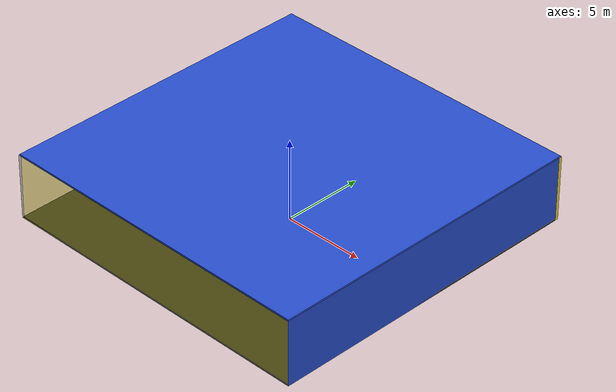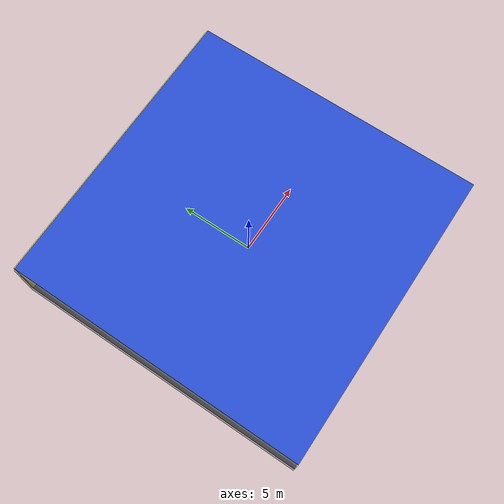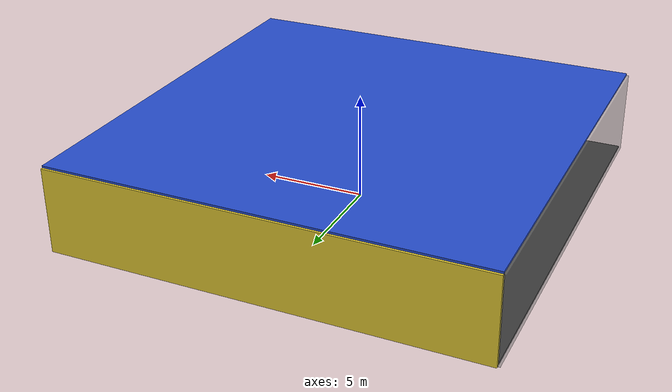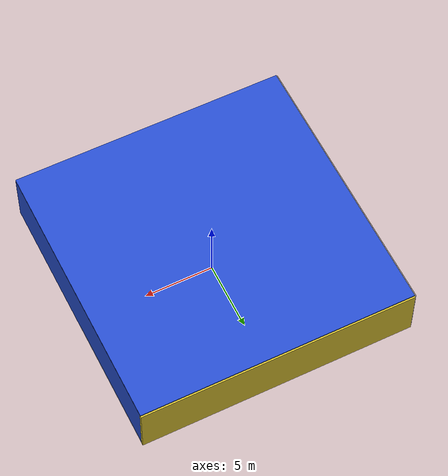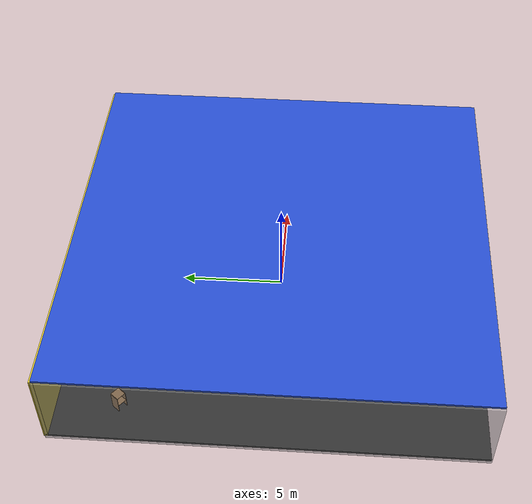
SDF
<sdf version="1.4">
 <world name="default">
  <physics type="ode">
   <max_step_size>0.001</max_step_size>
   <real_time_factor>1</real_time_factor>
   <real_time_update_rate>1000</real_time_update_rate>
   <gravity>0 0 -9.8</gravity>
  </physics>
  <scene><ambient>0.4 0.4 0.4 1</ambient><background>0.7 0.7 0.7 1</background><shadows>1</shadows></scene>
  <model name="Surrounding">
   <static>1</static>
   <link name="Ceiling">
    <collision name="Ceiling_Collision"><geometry><box><size>20 20 0.1</size></box></geometry></collision>
    <visual name="Ceiling_Visual">
     <geometry><box><size>20 20 0.1</size></box></geometry>
     <material>
      <script><uri>file://media/materials/scripts/gazebo.material</uri><name>Gazebo/BlueLaser</name></script>
     </material>
    </visual>
    <pose>0 0 4.05 0 0 0</pose>
   </link>
   <link name="Wall_South">
    <collision name="Wall_South_Collision">
     <geometry><box><size>20 0 4</size></box></geometry>
     <pose>0 0 2 0 -0 0</pose>
    </collision>
    <visual name="Wall_South_Visual">
     <pose>0 0 2 0 -0 0</pose>
     <geometry><box><size>20 0 4</size></box></geometry>
     <material>
      <script>
       <uri>file://media/materials/scripts/gazebo.material</uri>
       <name>Gazebo/YellowTransparent</name>
      </script>
     </material>
    </visual>
    <velocity_decay><linear>0</linear><angular>0</angular></velocity_decay>
    <pose>0 -10 0 0 -0 0</pose>
   </link>
   <link name="Wall_East">
    <collision name="Wall_21_Collision">
     <geometry><box><size>20 0 4</size></box></geometry>
     <pose>0 0 2 0 -0 0</pose>
    </collision>
    <visual name="Wall_21_Visual">
     <pose>0 0 2 0 -0 0</pose>
     <geometry><box><size>20 0 4</size></box></geometry>
     <material>
      <script><uri>file://media/materials/scripts/gazebo.material</uri><name>Gazebo/BlueGlow</name></script>
     </material>
    </visual>
    <velocity_decay><linear>0</linear><angular>0</angular></velocity_decay>
    <pose>10 0 0 0 -0 1.5708</pose>
   </link>
   <link name="Wall_North">
    <collision name="Wall_22_Collision">
     <geometry><box><size>20 0.2 4</size></box></geometry>
     <pose>0 0 2 0 -0 0</pose>
    </collision>
    <visual name="Wall_22_Visual">
     <pose>0 0 2 0 -0 0</pose>
     <geometry><box><size>20 0.2 4</size></box></geometry>
     <material>
      <script><uri>file://media/materials/scripts/gazebo.material</uri><name>Gazebo/ZincYellow</name></script>
     </material>
    </visual>
    <velocity_decay><linear>0</linear><angular>0</angular></velocity_decay>
    <pose>0 10 0 0 -0 0</pose>
   </link>
   <link name="Wall_West">
    <collision name="Wall_23_Collision">
     <geometry><box><size>20 0.2 4</size></box></geometry>
     <pose>0 0 2 0 -0 0</pose>
    </collision>
    <visual name="Wall_23_Visual">
     <pose>0 0 2 0 -0 0</pose>
     <geometry><box><size>20 0.2 4</size></box></geometry>
     <material>
      <script><uri>file://media/materials/scripts/gazebo.material</uri><name>Gazebo/GreyTransparent</name></script>
     </material>
    </visual>
    <velocity_decay><linear>0</linear><angular>0</angular></velocity_decay>
    <pose>-10 0 0 0 0 -1.5708</pose>
   </link>
   <link name="Ground_link">
    <collision name="collision">
     <pose>0 0 .05 0 -0 0</pose>
     <geometry><box><size>20 20 0.1</size></box></geometry>
    </collision>
    <visual name="visual">
     <pose>0 0 .05 0 -0 0</pose>
     <geometry><box><size>20 20 0.1</size></box></geometry>
     <material>
      <script><uri>file://media/materials/scripts/gazebo.material</uri><name>Gazebo/Black</name></script>
     </material>
    </visual>
   </link>
   <static>1</static>
  </model>
  <spherical_coordinates>
   <surface_model>EARTH_WGS84</surface_model>
   <latitude_deg>0</latitude_deg>
   <longitude_deg>0</longitude_deg>
   <elevation>0</elevation>
   <heading_deg>0</heading_deg>
  </spherical_coordinates>
  <light name="lightball_0" type="diffuse">
   <diffuse>0.8 0.8 0.8 1</diffuse>
   <specular>0.2 0.2 0.2 1</specular>
   <attenuation>
    <range>100</range>
    <constant>0.7</constant>
    <linear>0.01</linear>
    <quadratic>0.001</quadratic>
   </attenuation>
   <direction>-0.5 0.1 -0.9</direction>
   <pose>9.86708706532 -3.51122816298 1.91490897901 0 0 0</pose>
  </light>
  <light name="lightball_1" type="diffuse">
   <diffuse>0.8 0.8 0.8 1</diffuse>
   <specular>0.2 0.2 0.2 1</specular>
   <attenuation>
    <range>100</range>
    <constant>0.7</constant>
    <linear>0.01</linear>
    <quadratic>0.001</quadratic>
   </attenuation>
   <direction>-0.5 0.1 -0.9</direction>
   <pose>4.70656872876 5.18731394176 2.79743948814 0 0 0</pose>
  </light>
  <light name="lightball_2" type="diffuse">
   <diffuse>0.8 0.8 0.8 1</diffuse>
   <specular>0.2 0.2 0.2 1</specular>
   <attenuation>
    <range>100</range>
    <constant>0.7</constant>
    <linear>0.01</linear>
    <quadratic>0.001</quadratic>
   </attenuation>
   <direction>-0.5 0.1 -0.9</direction>
   <pose>-9.77473641766 3.39157790041 0.625188291378 0 0 0</pose>
  </light>
  <light name="lightball_3" type="diffuse">
   <diffuse>0.8 0.8 0.8 1</diffuse>
   <specular>0.2 0.2 0.2 1</specular>
   <attenuation>
    <range>100</range>
    <constant>0.7</constant>
    <linear>0.01</linear>
    <quadratic>0.001</quadratic>
   </attenuation>
   <direction>-0.5 0.1 -0.9</direction>
   <pose>5.1595926449 -0.850724744592 3.10005513471 0 0 0</pose>
  </light>
  <light name="lightball_4" type="diffuse">
   <diffuse>0.8 0.8 0.8 1</diffuse>
   <specular>0.2 0.2 0.2 1</specular>
   <attenuation>
    <range>100</range>
    <constant>0.7</constant>
    <linear>0.01</linear>
    <quadratic>0.001</quadratic>
   </attenuation>
   <direction>-0.5 0.1 -0.9</direction>
   <pose>1.42214090284 8.91073519389 0.654729443594 0 0 0</pose>
  </light>
  <light name="lightball_5" type="diffuse">
   <diffuse>0.8 0.8 0.8 1</diffuse>
   <specular>0.2 0.2 0.2 1</specular>
   <attenuation>
    <range>100</range>
    <constant>0.7</constant>
    <linear>0.01</linear>
    <quadratic>0.001</quadratic>
   </attenuation>
   <direction>-0.5 0.1 -0.9</direction>
   <pose>-2.79983835752 6.32543074799 0.553851181692 0 0 0</pose>
  </light>
  <light name="lightball_6" type="diffuse">
   <diffuse>0.8 0.8 0.8 1</diffuse>
   <specular>0.2 0.2 0.2 1</specular>
   <attenuation>
    <range>100</range>
    <constant>0.7</constant>
    <linear>0.01</linear>
    <quadratic>0.001</quadratic>
   </attenuation>
   <direction>-0.5 0.1 -0.9</direction>
   <pose>3.83542694863 -1.51556047555 0.779156651911 0 0 0</pose>
  </light>
  <light name="lightball_7" type="diffuse">
   <diffuse>0.8 0.8 0.8 1</diffuse>
   <specular>0.2 0.2 0.2 1</specular>
   <attenuation>
    <range>100</range>
    <constant>0.7</constant>
    <linear>0.01</linear>
    <quadratic>0.001</quadratic>
   </attenuation>
   <direction>-0.5 0.1 -0.9</direction>
   <pose>1.78789731733 -4.68350678019 3.20280176302 0 0 0</pose>
  </light>
  <light name="lightball_8" type="diffuse">
   <diffuse>0.8 0.8 0.8 1</diffuse>
   <specular>0.2 0.2 0.2 1</specular>
   <attenuation>
    <range>100</range>
    <constant>0.7</constant>
    <linear>0.01</linear>
    <quadratic>0.001</quadratic>
   </attenuation>
   <direction>-0.5 0.1 -0.9</direction>
   <pose>4.92552813871 2.57930155927 2.22322973983 0 0 0</pose>
  </light>
  <light name="lightball_9" type="diffuse">
   <diffuse>0.8 0.8 0.8 1</diffuse>
   <specular>0.2 0.2 0.2 1</specular>
   <attenuation>
    <range>100</range>
    <constant>0.7</constant>
    <linear>0.01</linear>
    <quadratic>0.001</quadratic>
   </attenuation>
   <direction>-0.5 0.1 -0.9</direction>
   <pose>-5.16619160396 5.81038571359 1.3553311862 0 0 0</pose>
  </light>
  <light name="lightball_10" type="diffuse">
   <diffuse>0.8 0.8 0.8 1</diffuse>
   <specular>0.2 0.2 0.2 1</specular>
   <attenuation>
    <range>100</range>
    <constant>0.7</constant>
    <linear>0.01</linear>
    <quadratic>0.001</quadratic>
   </attenuation>
   <direction>-0.5 0.1 -0.9</direction>
   <pose>7.24470599133 -1.30918217701 2.64212252404 0 0 0</pose>
  </light>
  <light name="lightball_11" type="diffuse">
   <diffuse>0.8 0.8 0.8 1</diffuse>
   <specular>0.2 0.2 0.2 1</specular>
   <attenuation>
    <range>100</range>
    <constant>0.7</constant>
    <linear>0.01</linear>
    <quadratic>0.001</quadratic>
   </attenuation>
   <direction>-0.5 0.1 -0.9</direction>
   <pose>2.11360974847 -8.30222965381 1.67367067095 0 0 0</pose>
  </light>
  <light name="lightball_12" type="diffuse">
   <diffuse>0.8 0.8 0.8 1</diffuse>
   <specular>0.2 0.2 0.2 1</specular>
   <attenuation>
    <range>100</range>
    <constant>0.7</constant>
    <linear>0.01</linear>
    <quadratic>0.001</quadratic>
   </attenuation>
   <direction>-0.5 0.1 -0.9</direction>
   <pose>-8.94844348649 0.631715847029 0.541459848346 0 0 0</pose>
  </light>
  <light name="lightball_13" type="diffuse">
   <diffuse>0.8 0.8 0.8 1</diffuse>
   <specular>0.2 0.2 0.2 1</specular>
   <attenuation>
    <range>100</range>
    <constant>0.7</constant>
    <linear>0.01</linear>
    <quadratic>0.001</quadratic>
   </attenuation>
   <direction>-0.5 0.1 -0.9</direction>
   <pose>-5.83200109071 0.368750984686 3.7116941033 0 0 0</pose>
  </light>
  <include><uri>model://cabinet</uri><pose>-8.21780517035 6.92373285519 0 0 0 0.891988573266</pose></include>
  <include>
   <uri>model://construction_cone</uri>
   <pose>-4.5902259415 4.13671157614 0 0 0 1.42971281374</pose>
  </include>
  <include><uri>model://cabinet</uri><pose>-5.16700737232 6.77414652656 0 0 0 0.774553576056</pose></include>
  <include><uri>model://cabinet</uri><pose>3.82465330269 7.35422962983 0 0 0 2.35297264806</pose></include>
  <include><uri>model://table</uri><pose>6.77868463485 -4.0855626531 0 0 0 1.05546951108</pose></include>
 </world>
</sdf>

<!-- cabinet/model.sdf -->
<sdf version="1.5">
  <model name="cabinet">
    <static>true</static>
    <link name="cabinet_bottom_plate">
      <inertial>
        <pose>0 0 -1 0 0 0</pose>
        <inertia>
          <ixx>2.050000</ixx>
          <ixy>0</ixy>
          <ixz>0</ixz>
          <iyy>2.050000</iyy>
          <iyz>0</iyz>
          <izz>2.050000</izz>
        </inertia>
        <mass>25.000000</mass>
      </inertial>
      <collision name="cabinet_bottom_plate_geom">
        <pose>0 0 0.010000 0 0 0</pose>
        <geometry>
          <box>
            <size>0.450000 0.450000 0.020000</size>
          </box>
        </geometry>
      </collision>
      <visual name="cabinet_bottom_plate_geom_visual">
        <pose>0 0 0.010000 0 0 0</pose>
        <geometry>
          <box>
            <size>0.450000 0.450000 0.020000</size>
          </box>
        </geometry>
        <material>
          <script>
            <uri>model://media/materials/scripts/gazebo.material</uri>
            <name>Gazebo/Wood</name>
          </script>
        </material>
      </visual>
      <collision name="cabinet_bottom_plate_geom_cabinet_back_plate">
        <pose>0.235000 0 0.510000 0 0 0</pose>
        <geometry>
          <box>
            <size>0.020000 0.450000 1.020000</size>
          </box>
        </geometry>
      </collision>
      <visual name="cabinet_bottom_plate_geom_cabinet_back_plate_visual">
        <pose>0.235000 0 0.510000 0 0 0</pose>
        <geometry>
          <box>
            <size>0.020000 0.450000 1.020000</size>
          </box>
        </geometry>
        <material>
          <script>
            <uri>model://media/materials/scripts/gazebo.material</uri>
            <name>Gazebo/Wood</name>
          </script>
        </material>
      </visual>
      <collision name="cabinet_bottom_plate_geom_cabinet_left_plate">
        <pose>0 0.235000 0.510000 0 0 0</pose>
        <geometry>
          <box>
            <size>0.450000 0.020000 1.020000</size>
          </box>
        </geometry>
      </collision>
      <visual name="cabinet_bottom_plate_geom_cabinet_left_plate_visual">
        <pose>0 0.235000 0.510000 0 0 0</pose>
        <geometry>
          <box>
            <size>0.450000 0.020000 1.020000</size>
          </box>
        </geometry>
        <material>
          <script>
            <uri>model://media/materials/scripts/gazebo.material</uri>
            <name>Gazebo/Wood</name>
          </script>
        </material>
      </visual>
      <collision name="cabinet_bottom_plate_geom_cabinet_middle_plate">
        <pose>0 0 0.510000 0 0 0</pose>
        <geometry>
          <box>
            <size>0.450000 0.450000 0.020000</size>
          </box>
        </geometry>
      </collision>
      <visual name="cabinet_bottom_plate_geom_cabinet_middle_plate_visual">
        <pose>0 0 0.510000 0 0 0</pose>
        <geometry>
          <box>
            <size>0.450000 0.450000 0.020000</size>
          </box>
        </geometry>
        <material>
          <script>
            <uri>model://media/materials/scripts/gazebo.material</uri>
            <name>Gazebo/Wood</name>
          </script>
        </material>
      </visual>
      <collision name="cabinet_bottom_plate_geom_cabinet_right_plate">
        <pose>0 -0.235000 0.510000 0 0 0</pose>
        <geometry>
          <box>
            <size>0.450000 0.020000 1.020000</size>
          </box>
        </geometry>
      </collision>
      <visual name="cabinet_bottom_plate_geom_cabinet_right_plate_visual">
        <pose>0 -0.235000 0.510000 0 0 0</pose>
        <geometry>
          <box>
            <size>0.450000 0.020000 1.020000</size>
          </box>
        </geometry>
        <material>
          <script>
            <uri>model://media/materials/scripts/gazebo.material</uri>
            <name>Gazebo/Wood</name>
          </script>
        </material>
      </visual>
      <collision name="cabinet_bottom_plate_geom_cabinet_top_plate">
        <pose>0 0 1.010000 0 0 0</pose>
        <geometry>
          <box>
            <size>0.450000 0.450000 0.020000</size>
          </box>
        </geometry>
      </collision>
      <visual name="cabinet_bottom_plate_geom_cabinet_top_plate_visual">
        <pose>0 0 1.010000 0 0 0</pose>
        <geometry>
          <box>
            <size>0.450000 0.450000 0.020000</size>
          </box>
        </geometry>
        <material>
          <script>
            <uri>model://media/materials/scripts/gazebo.material</uri>
            <name>Gazebo/Wood</name>
          </script>
        </material>
      </visual>
    </link>
  </model>
</sdf>

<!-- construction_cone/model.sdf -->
<sdf version="1.5">
  <model name="Construction Cone">
    <link name="link">
      <collision name="collision">
        <geometry>
          <mesh>
            <scale>10 10 10</scale>
            <uri>file://isr-testbed/construction_cone/meshes/construction_cone.dae</uri>
          </mesh>
        </geometry>
      </collision>
      <visual name="visual">
        <geometry>
          <mesh>
            <scale>10 10 10</scale>
            <uri>file://isr-testbed/construction_cone/meshes/construction_cone.dae</uri>
          </mesh>
        </geometry>
      </visual>
    </link>
  </model>
</sdf>

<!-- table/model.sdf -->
<sdf version="1.5">
  <model name="table">
    <static>true</static>
    <link name="link">
      <collision name="surface">
        <pose>0 0 1.0 0 0 0</pose>
        <geometry>
          <box>
            <size>1.5 0.8 0.03</size>
          </box>
        </geometry>
        <surface>
          <friction>
            <ode>
              <mu>0.6</mu>
              <mu2>0.6</mu2>
            </ode>
          </friction>
        </surface>
      </collision>
      <visual name="visual1">
        <pose>0 0 1.0 0 0 0</pose>
        <geometry>
          <box>
            <size>1.5 0.8 0.03</size>
          </box>
        </geometry>
        <material>
          <script>
            <uri>model://media/materials/scripts/gazebo.material</uri>
            <name>Gazebo/Wood</name>
          </script>
        </material>
      </visual>
      <collision name="front_left_leg">
        <pose>0.68 0.38 0.5 0 0 0</pose>
        <geometry>
          <cylinder>
            <radius>0.02</radius>
            <length>1.0</length>
          </cylinder>
        </geometry>
      </collision>
      <visual name="front_left_leg">
        <pose>0.68 0.38 0.5 0 0 0</pose>
        <geometry>
          <cylinder>
            <radius>0.02</radius>
            <length>1.0</length>
          </cylinder>
        </geometry>
        <material>
          <script>
            <uri>model://media/materials/scripts/gazebo.material</uri>
            <name>Gazebo/Grey</name>
          </script>
        </material>
      </visual>
      <collision name="front_right_leg">
        <pose>0.68 -0.38 0.5 0 0 0</pose>
        <geometry>
          <cylinder>
            <radius>0.02</radius>
            <length>1.0</length>
          </cylinder>
        </geometry>
      </collision>
      <visual name="front_right_leg">
        <pose>0.68 -0.38 0.5 0 0 0</pose>
        <geometry>
          <cylinder>
            <radius>0.02</radius>
            <length>1.0</length>
          </cylinder>
        </geometry>
        <material>
          <script>
            <uri>model://media/materials/scripts/gazebo.material</uri>
            <name>Gazebo/Grey</name>
          </script>
        </material>
      </visual>
      <collision name="back_right_leg">
        <pose>-0.68 -0.38 0.5 0 0 0</pose>
        <geometry>
          <cylinder>
            <radius>0.02</radius>
            <length>1.0</length>
          </cylinder>
        </geometry>
      </collision>
      <visual name="back_right_leg">
        <pose>-0.68 -0.38 0.5 0 0 0</pose>
        <geometry>
          <cylinder>
            <radius>0.02</radius>
            <length>1.0</length>
          </cylinder>
        </geometry>
        <material>
          <script>
            <uri>model://media/materials/scripts/gazebo.material</uri>
            <name>Gazebo/Grey</name>
          </script>
        </material>
      </visual>
      <collision name="back_left_leg">
        <pose>-0.68 0.38 0.5 0 0 0</pose>
        <geometry>
          <cylinder>
            <radius>0.02</radius>
            <length>1.0</length>
          </cylinder>
        </geometry>
      </collision>
      <visual name="back_left_leg">
        <pose>-0.68 0.38 0.5 0 0 0</pose>
        <geometry>
          <cylinder>
            <radius>0.02</radius>
            <length>1.0</length>
          </cylinder>
        </geometry>
        <material>
          <script>
            <uri>model://media/materials/scripts/gazebo.material</uri>
            <name>Gazebo/Grey</name>
          </script>
        </material>
      </visual>
    </link>
  </model>
</sdf>
